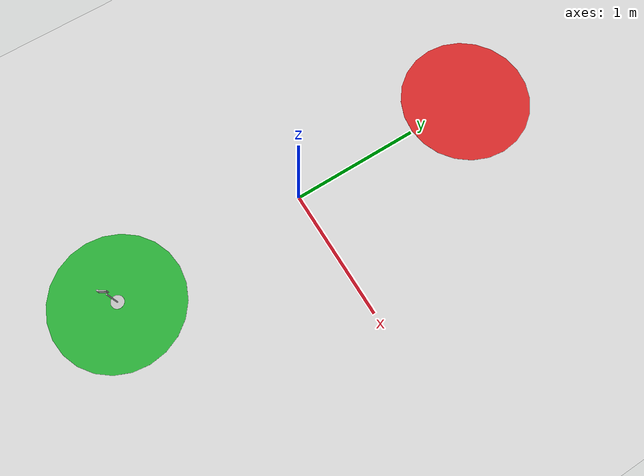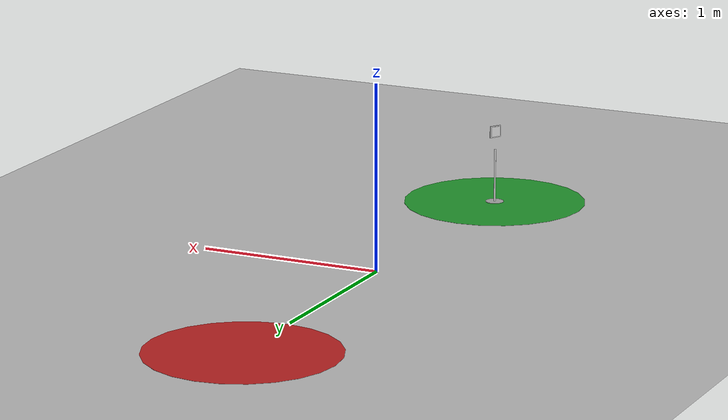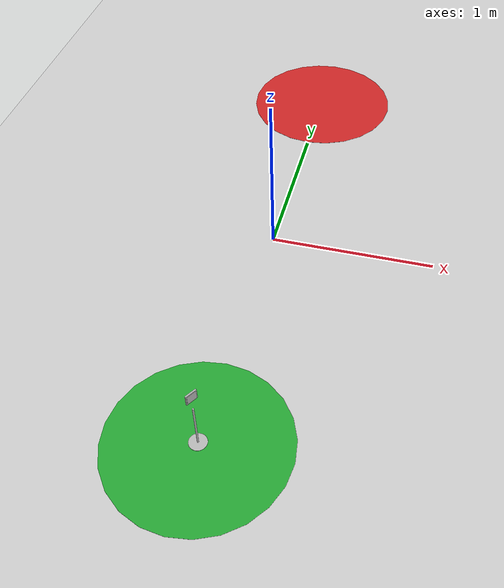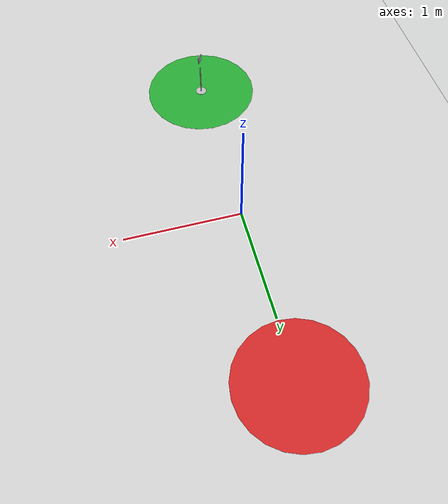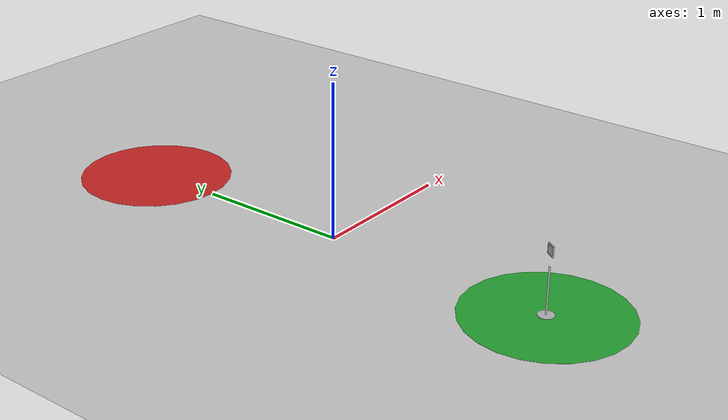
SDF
<sdf version="1.7">
 <world name="default">
  <light name="sun" type="directional">
   <pose>0 0 10 0 -0 0</pose>
   <diffuse>0.8 0.8 0.8 1</diffuse>
   <specular>0.2 0.2 0.2 1</specular>
   <attenuation>
    <range>1000</range>
    <constant>0.9</constant>
    <linear>0.01</linear>
    <quadratic>0.001</quadratic>
   </attenuation>
   <direction>-0.5 0.1 -0.9</direction>
   <spot><inner_angle>0</inner_angle><outer_angle>0</outer_angle><falloff>0</falloff></spot>
  </light>
  <model name="ground_plane">
   <static>1</static>
   <link name="link">
    <collision name="collision">
     <geometry><plane><normal>0 0 1</normal><size>100 100</size></plane></geometry>
     <surface>
      <contact><collide_bitmask>65535</collide_bitmask></contact>
      <friction><ode><mu>100</mu><mu2>50</mu2></ode></friction>
     </surface>
    </collision>
    <visual name="visual">
     <cast_shadows>0</cast_shadows>
     <geometry><plane><normal>0 0 1</normal><size>100 100</size></plane></geometry>
     <material>
      <script><uri>file://media/materials/scripts/gazebo.material</uri><name>Gazebo/Grey</name></script>
     </material>
    </visual>
   </link>
  </model>
  <gravity>0 0 -9.8</gravity>
  <magnetic_field>6e-06 2.3e-05 -4.2e-05</magnetic_field>
  <atmosphere type="adiabatic"/>
  <physics type="ode">
   <max_step_size>0.001</max_step_size>
   <real_time_factor>1</real_time_factor>
   <real_time_update_rate>1000</real_time_update_rate>
  </physics>
  <scene><ambient>0.4 0.4 0.4 1</ambient><background>0.7 0.7 0.7 1</background><shadows>1</shadows></scene>
  <audio><device>default</device></audio>
  <spherical_coordinates>
   <surface_model>EARTH_WGS84</surface_model>
   <latitude_deg>0</latitude_deg>
   <longitude_deg>0</longitude_deg>
   <elevation>0</elevation>
   <heading_deg>0</heading_deg>
  </spherical_coordinates>
  <model name="green_area">
   <link name="link_8">
    <inertial>
     <mass>1</mass>
     <inertia><ixx>0.145833</ixx><ixy>0</ixy><ixz>0</ixz><iyy>0.145833</iyy><iyz>0</iyz><izz>0.125</izz></inertia>
    </inertial>
    <gravity>0</gravity>
    <visual name="visual">
     <geometry><cylinder><radius>0.5</radius><length>0.001</length></cylinder></geometry>
     <material>
      <lighting>1</lighting>
      <script><uri>file://media/materials/scripts/gazebo.material</uri><name>Gazebo/Green</name></script>
      <shader type="pixel"><normal_map>__default__</normal_map></shader>
      <ambient>0 1 0 1</ambient>
      <diffuse>0 1 0 1</diffuse>
      <specular>0.1 0.1 0.1 1</specular>
      <emissive>0 0 0 1</emissive>
     </material>
    </visual>
   </link>
   <static>0</static>
   <pose>-0.009347 -1.49575 0.006966 0 -0 0</pose>
  </model>
  <model name="red_area">
   <link name="link_7">
    <inertial>
     <mass>1</mass>
     <inertia><ixx>0.145833</ixx><ixy>0</ixy><ixz>0</ixz><iyy>0.145833</iyy><iyz>0</iyz><izz>0.125</izz></inertia>
    </inertial>
    <gravity>0</gravity>
    <visual name="visual">
     <geometry><cylinder><radius>0.5</radius><length>0.001</length></cylinder></geometry>
     <material>
      <lighting>1</lighting>
      <script><uri>file://media/materials/scripts/gazebo.material</uri><name>Gazebo/Red</name></script>
      <shader type="pixel"><normal_map>__default__</normal_map></shader>
      <ambient>1 0 0 1</ambient>
      <diffuse>1 0 0 1</diffuse>
      <specular>0.1 0.1 0.1 1</specular>
      <emissive>0 0 0 1</emissive>
     </material>
    </visual>
   </link>
   <static>0</static>
   <pose>-0.002733 1.51431 -0.000364 0 -0 0</pose>
  </model>
  <model name="pickable_object_0">
   <static>0</static>
   <pose>-0.01094 -1.49183 0.005 0 0 -0.574694</pose>
   <link name="object">
    <inertial>
     <mass>0.05</mass>
     <inertia><ixx>1e-05</ixx><iyy>1e-05</iyy><izz>1e-05</izz><ixy>0</ixy><ixz>0</ixz><iyz>0</iyz></inertia>
    </inertial>
    <collision name="collision_base">
     <geometry><cylinder><radius>0.05</radius><length>0.01</length></cylinder></geometry>
    </collision>
    <collision name="collision_pole">
     <pose>0 0 0.15 0 -0 0</pose>
     <geometry><cylinder><radius>0.005</radius><length>0.3</length></cylinder></geometry>
    </collision>
    <visual name="visual_base">
     <geometry><cylinder><radius>0.05</radius><length>0.01</length></cylinder></geometry>
    </visual>
    <visual name="visual_pole">
     <pose>0 0 0.15 0 -0 0</pose>
     <geometry><cylinder><radius>0.005</radius><length>0.3</length></cylinder></geometry>
    </visual>
    <visual name="visual-mesh">
     <pose>0 0 0.4 0 -0 1.57</pose>
     <geometry><mesh><uri>model://aruco_marker/meshes/ArUcoMarker.dae</uri></mesh></geometry>
    </visual>
    <visual name="visual-frame">
     <pose>0 0 0.4 1.57 -0 0</pose>
     <geometry><box><size>0.008 0.065 0.065</size></box></geometry>
    </visual>
   </link>
  </model>
  <plugin name="gazebo_link_attacher" filename="libgazebo_link_attacher.so"/>
 </world>
</sdf>
